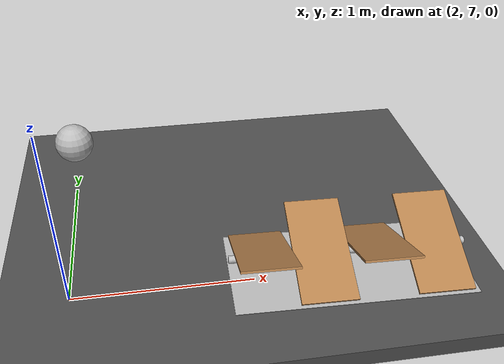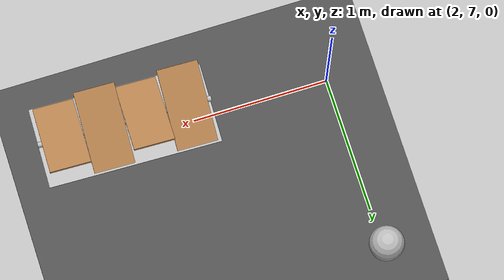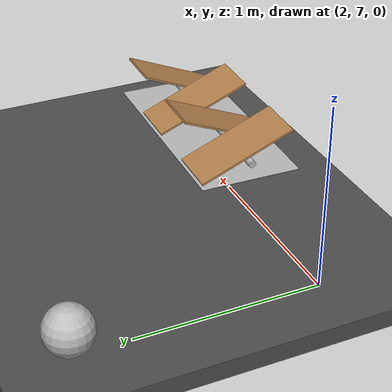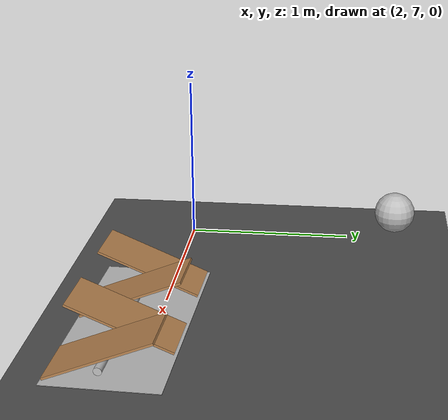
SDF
<sdf version="1.7">
 <world name="default">
  <model name="ground_plane">
   <static>1</static>
   <link name="link">
    <collision name="collision">
     <geometry><plane><normal>0 0 1</normal><size>100 100</size></plane></geometry>
     <surface>
      <contact><collide_bitmask>65535</collide_bitmask></contact>
      <friction><ode><mu>100</mu><mu2>50</mu2></ode></friction>
     </surface>
    </collision>
    <visual name="visual">
     <cast_shadows>0</cast_shadows>
     <geometry><plane><normal>0 0 1</normal><size>100 100</size></plane></geometry>
     <material>
      <script><uri>file://media/materials/scripts/gazebo.material</uri><name>Gazebo/Grey</name></script>
     </material>
    </visual>
   </link>
  </model>
  <model name="asphalt_plane">
   <static>1</static>
   <link name="link">
    <collision name="collision"><geometry><box><size>20 20 0.1</size></box></geometry></collision>
    <visual name="visual">
     <cast_shadows>0</cast_shadows>
     <geometry><box><size>20 20 0.1</size></box></geometry>
     <material>
      <script>
       <uri>model://asphalt_plane/materials/scripts</uri>
       <uri>model://asphalt_plane/materials/textures</uri>
       <name>vrc/asphalt</name>
      </script>
     </material>
    </visual>
   </link>
   <pose>0.038483 -0.02122 0 0 -0 0</pose>
  </model>
  <model name="frc2016_ball">
   <pose>1.98746 8.30672 0.176984 0 -0 0</pose>
   <link name="link">
    <inertial>
     <mass>0.213</mass>
     <inertia>
      <ixx>0.00322667</ixx>
      <ixy>0</ixy>
      <ixz>0</ixz>
      <iyy>0.00322667</iyy>
      <iyz>0</iyz>
      <izz>0.00322667</izz>
     </inertia>
    </inertial>
    <visual name="visual"><geometry><sphere><radius>0.127</radius></sphere></geometry></visual>
    <collision name="collision">
     <geometry><sphere><radius>0.127</radius></sphere></geometry>
     <surface>
      <bounce><restitution_coefficient>0.15937</restitution_coefficient><threshold>0</threshold></bounce>
      <contact><ode><max_vel>100</max_vel><min_depth>0.001</min_depth></ode></contact>
     </surface>
    </collision>
   </link>
  </model>
  <model name="frc2016_chevaldefrise">
   <link name="base">
    <inertial>
     <mass>10</mass>
     <pose>0 0 0.15672 0 -0 0</pose>
     <inertia><ixx>0.380221</ixx><ixy>0</ixy><ixz>0</ixz><iyy>1.43365</iyy><iyz>0</iyz><izz>1.64745</izz></inertia>
    </inertial>
    <visual name="platform">
     <pose>0 0 0.06968 0 -0 0</pose>
     <geometry><box><size>1.27 0.5969 0.003175</size></box></geometry>
    </visual>
    <collision name="platform">
     <pose>0 0 0.06968 0 -0 0</pose>
     <geometry><box><size>1.27 0.5969 0.003175</size></box></geometry>
    </collision>
    <visual name="bar">
     <pose>0 0 0.16855 0 1.5707 0</pose>
     <geometry><cylinder><radius>0.02108</radius><length>1.273</length></cylinder></geometry>
    </visual>
    <collision name="bar">
     <pose>0 0 0.16855 0 1.5707 0</pose>
     <geometry><cylinder><radius>0.02108</radius><length>1.27</length></cylinder></geometry>
    </collision>
    <visual name="castor1">
     <pose>-0.45653 -0.16581 0.03175 0 -0 0</pose>
     <geometry><sphere><radius>0.03175</radius></sphere></geometry>
    </visual>
    <collision name="castor1">
     <pose>-0.45653 -0.16581 0.03175 0 -0 0</pose>
     <geometry><sphere><radius>0.03175</radius></sphere></geometry>
    </collision>
    <visual name="castor2">
     <pose>-0.27855 0.21408 0.03175 0 -0 0</pose>
     <geometry><sphere><radius>0.03175</radius></sphere></geometry>
    </visual>
    <collision name="castor2">
     <pose>-0.27855 0.21408 0.03175 0 -0 0</pose>
     <geometry><sphere><radius>0.03175</radius></sphere></geometry>
    </collision>
    <visual name="castor3">
     <pose>0.28191 0.21419 0.03175 0 -0 0</pose>
     <geometry><sphere><radius>0.03175</radius></sphere></geometry>
    </visual>
    <collision name="castor3">
     <pose>0.28191 0.21419 0.03175 0 -0 0</pose>
     <geometry><sphere><radius>0.03175</radius></sphere></geometry>
    </collision>
    <visual name="castor4">
     <pose>0.45965 -0.16602 0.03175 0 -0 0</pose>
     <geometry><sphere><radius>0.03175</radius></sphere></geometry>
    </visual>
    <collision name="castor4">
     <pose>0.45965 -0.16602 0.03175 0 -0 0</pose>
     <geometry><sphere><radius>0.03175</radius></sphere></geometry>
    </collision>
   </link>
   <link name="slant1">
    <pose>-0.4572 0.01307 0.1997 -0.39732 0 0</pose>
    <inertial>
     <pose>0 0.1 0 0 -0 0</pose>
     <mass>2</mass>
     <inertia>
      <ixx>0.0606857</ixx>
      <ixy>0</ixy>
      <ixz>0</ixz>
      <iyy>0.0148723</iyy>
      <iyz>0</iyz>
      <izz>0.0755042</izz>
     </inertia>
    </inertial>
    <visual name="visual">
     <geometry><box><size>0.29845 0.593285 0.0127</size></box></geometry>
     <material><script><name>Gazebo/WoodFloor</name><uri>__default__</uri></script></material>
    </visual>
    <collision name="collision"><geometry><box><size>0.29845 0.593285 0.0127</size></box></geometry></collision>
   </link>
   <link name="slant2">
    <pose>-0.1524 -0.01307 0.1997 0.39732 -0 0</pose>
    <inertial>
     <mass>2</mass>
     <pose>0 -0.1 0 0 -0 0</pose>
     <inertia>
      <ixx>0.0606857</ixx>
      <ixy>0</ixy>
      <ixz>0</ixz>
      <iyy>0.0148723</iyy>
      <iyz>0</iyz>
      <izz>0.0755042</izz>
     </inertia>
    </inertial>
    <visual name="visual">
     <geometry><box><size>0.29845 0.593285 0.0127</size></box></geometry>
     <material><script><name>Gazebo/WoodFloor</name><uri>__default__</uri></script></material>
    </visual>
    <collision name="collision"><geometry><box><size>0.29845 0.593285 0.0127</size></box></geometry></collision>
   </link>
   <link name="slant3">
    <pose>0.1524 0.01307 0.1997 -0.39732 0 0</pose>
    <inertial>
     <pose>0 0.1 0 0 -0 0</pose>
     <mass>2</mass>
     <inertia>
      <ixx>0.0606857</ixx>
      <ixy>0</ixy>
      <ixz>0</ixz>
      <iyy>0.0148723</iyy>
      <iyz>0</iyz>
      <izz>0.0755042</izz>
     </inertia>
    </inertial>
    <visual name="visual">
     <geometry><box><size>0.29845 0.593285 0.0127</size></box></geometry>
     <material><script><name>Gazebo/WoodFloor</name><uri>__default__</uri></script></material>
    </visual>
    <collision name="collision"><geometry><box><size>0.29845 0.593285 0.0127</size></box></geometry></collision>
   </link>
   <link name="slant4">
    <pose>0.4572 -0.01307 0.1997 0.39732 -0 0</pose>
    <inertial>
     <pose>0 -0.1 0 0 -0 0</pose>
     <mass>2</mass>
     <inertia>
      <ixx>0.0606857</ixx>
      <ixy>0</ixy>
      <ixz>0</ixz>
      <iyy>0.0148723</iyy>
      <iyz>0</iyz>
      <izz>0.0755042</izz>
     </inertia>
    </inertial>
    <visual name="visual">
     <geometry><box><size>0.29845 0.593285 0.0127</size></box></geometry>
     <material><script><name>Gazebo/WoodFloor</name><uri>__default__</uri></script></material>
    </visual>
    <collision name="collision"><geometry><box><size>0.29845 0.593285 0.0127</size></box></geometry></collision>
   </link>
   <joint name="slant1_joint" type="revolute">
    <parent>base</parent>
    <child>slant1</child>
    <axis>
     <xyz>1 0 0</xyz>
     <limit><lower>0</lower><upper>1.5707</upper></limit>
     <dynamics><spring_reference>0</spring_reference><spring_stiffness>0</spring_stiffness></dynamics>
    </axis>
   </joint>
   <joint name="slant2_joint" type="revolute">
    <parent>base</parent>
    <child>slant2</child>
    <axis>
     <xyz>1 0 0</xyz>
     <limit><lower>-1.5707</lower><upper>0</upper></limit>
     <dynamics><spring_reference>0</spring_reference><spring_stiffness>0</spring_stiffness></dynamics>
    </axis>
   </joint>
   <joint name="slant3_joint" type="revolute">
    <parent>base</parent>
    <child>slant3</child>
    <axis>
     <xyz>1 0 0</xyz>
     <limit><lower>0</lower><upper>1.5707</upper></limit>
     <dynamics><spring_reference>0</spring_reference><spring_stiffness>0</spring_stiffness></dynamics>
    </axis>
   </joint>
   <joint name="slant4_joint" type="revolute">
    <parent>base</parent>
    <child>slant4</child>
    <axis>
     <xyz>1 0 0</xyz>
     <limit><lower>-1.5707</lower><upper>0</upper></limit>
     <dynamics><spring_reference>0</spring_reference><spring_stiffness>0</spring_stiffness></dynamics>
    </axis>
   </joint>
   <pose>3.4856 6.91881 0.049996 -2.4e-05 -0 -0.028697</pose>
  </model>
 </world>
</sdf>
